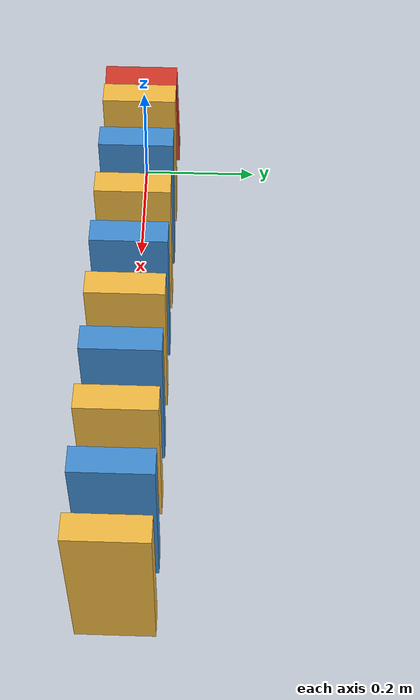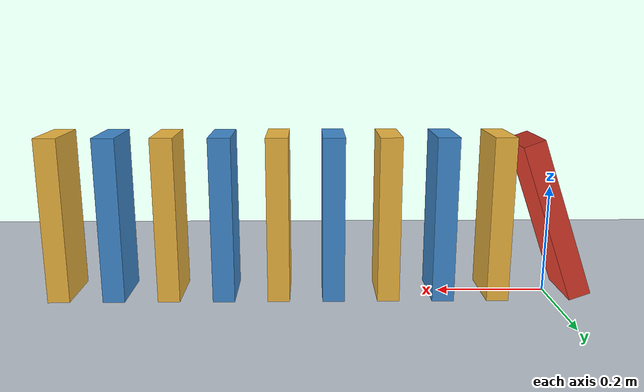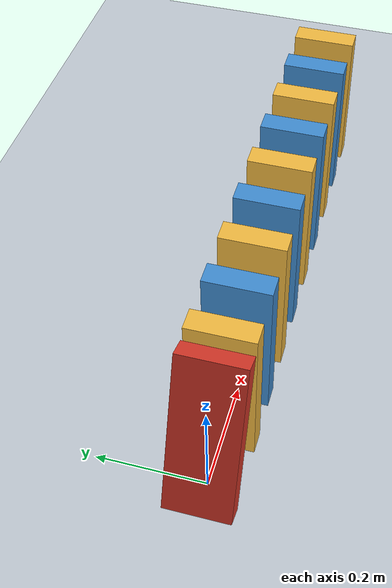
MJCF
<mujoco model="gravity_domino_chain">
  <compiler angle="degree"/>
  <option timestep="0.002" gravity="0 0 -9.81" integrator="implicitfast" iterations="100" cone="elliptic"/>
  <statistic center="0.45 0 0.12" extent="1.3"/>

  <visual>
    <headlight ambient="0.35 0.35 0.35" diffuse="0.7 0.7 0.7" specular="0.2 0.2 0.2"/>
  </visual>

  <worldbody>
    <light name="overhead" pos="0.4 -1 2" dir="0 0.3 -1"/>
    <camera name="overview" pos="1.5 -1.8 1.1" xyaxes="0.864 0.504 0 -0.225 0.386 0.895"/>

    <geom name="floor" type="plane" pos="0 0 0" size="3 2 0.1" friction="1 0.005 0.0001" solref="0.008 1" solimp="0.95 0.99 0.001" rgba="0.75 0.78 0.82 1"/>

    <!-- The first domino begins leaning 20 degrees toward +x.
         Its lowest corner starts 0.1 mm above the floor.
         Gravity alone initiates the cascade. -->
    <body name="domino1" pos="0 0 0.147894296" quat="0.9848077530 0 0.1736481777 0">
      <freejoint name="domino1_free"/>
      <geom name="domino1_geom" type="box" size="0.02 0.06 0.15" mass="0.2" friction="0.8 0.005 0.0001" solref="0.008 1" solimp="0.95 0.99 0.001" rgba="0.85 0.22 0.16 1"/>
    </body>

    <body name="domino2" pos="0.10 0 0.1501">
      <freejoint name="domino2_free"/>
      <geom name="domino2_geom" type="box" size="0.02 0.06 0.15" mass="0.2" friction="0.8 0.005 0.0001" solref="0.008 1" solimp="0.95 0.99 0.001" rgba="0.94 0.72 0.25 1"/>
    </body>

    <body name="domino3" pos="0.20 0 0.1501">
      <freejoint name="domino3_free"/>
      <geom name="domino3_geom" type="box" size="0.02 0.06 0.15" mass="0.2" friction="0.8 0.005 0.0001" solref="0.008 1" solimp="0.95 0.99 0.001" rgba="0.25 0.55 0.82 1"/>
    </body>

    <body name="domino4" pos="0.30 0 0.1501">
      <freejoint name="domino4_free"/>
      <geom name="domino4_geom" type="box" size="0.02 0.06 0.15" mass="0.2" friction="0.8 0.005 0.0001" solref="0.008 1" solimp="0.95 0.99 0.001" rgba="0.94 0.72 0.25 1"/>
    </body>

    <body name="domino5" pos="0.40 0 0.1501">
      <freejoint name="domino5_free"/>
      <geom name="domino5_geom" type="box" size="0.02 0.06 0.15" mass="0.2" friction="0.8 0.005 0.0001" solref="0.008 1" solimp="0.95 0.99 0.001" rgba="0.25 0.55 0.82 1"/>
    </body>

    <body name="domino6" pos="0.50 0 0.1501">
      <freejoint name="domino6_free"/>
      <geom name="domino6_geom" type="box" size="0.02 0.06 0.15" mass="0.2" friction="0.8 0.005 0.0001" solref="0.008 1" solimp="0.95 0.99 0.001" rgba="0.94 0.72 0.25 1"/>
    </body>

    <body name="domino7" pos="0.60 0 0.1501">
      <freejoint name="domino7_free"/>
      <geom name="domino7_geom" type="box" size="0.02 0.06 0.15" mass="0.2" friction="0.8 0.005 0.0001" solref="0.008 1" solimp="0.95 0.99 0.001" rgba="0.25 0.55 0.82 1"/>
    </body>

    <body name="domino8" pos="0.70 0 0.1501">
      <freejoint name="domino8_free"/>
      <geom name="domino8_geom" type="box" size="0.02 0.06 0.15" mass="0.2" friction="0.8 0.005 0.0001" solref="0.008 1" solimp="0.95 0.99 0.001" rgba="0.94 0.72 0.25 1"/>
    </body>

    <body name="domino9" pos="0.80 0 0.1501">
      <freejoint name="domino9_free"/>
      <geom name="domino9_geom" type="box" size="0.02 0.06 0.15" mass="0.2" friction="0.8 0.005 0.0001" solref="0.008 1" solimp="0.95 0.99 0.001" rgba="0.25 0.55 0.82 1"/>
    </body>

    <body name="domino10" pos="0.90 0 0.1501">
      <freejoint name="domino10_free"/>
      <geom name="domino10_geom" type="box" size="0.02 0.06 0.15" mass="0.2" friction="0.8 0.005 0.0001" solref="0.008 1" solimp="0.95 0.99 0.001" rgba="0.94 0.72 0.25 1"/>
    </body>
  </worldbody>
</mujoco>
